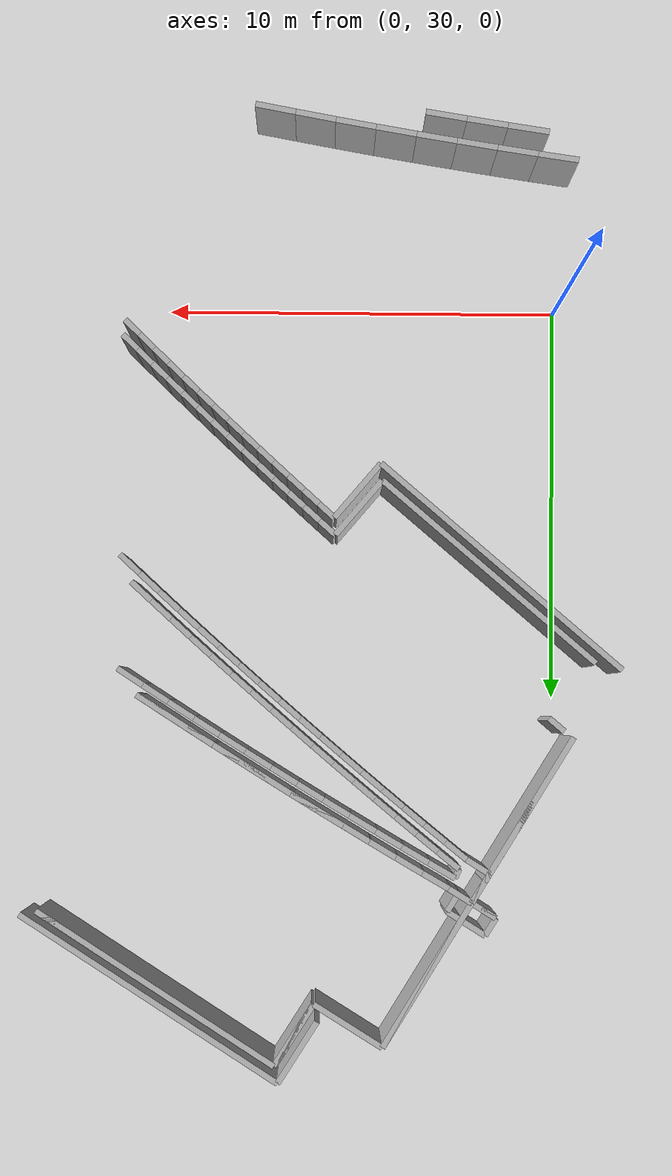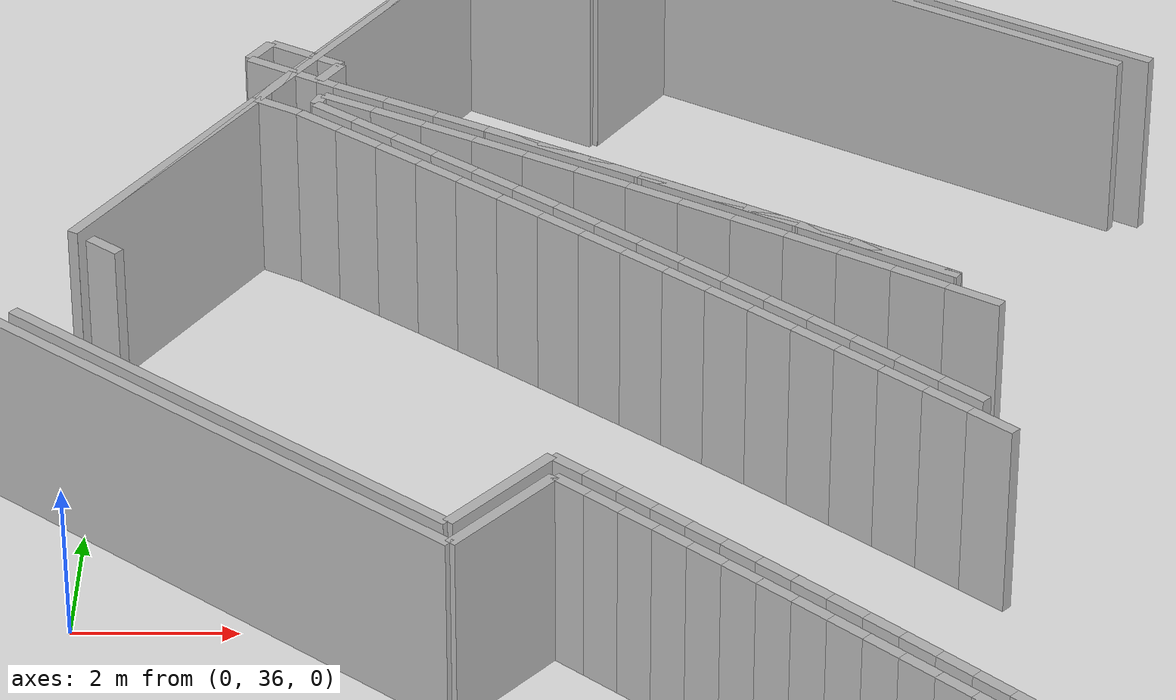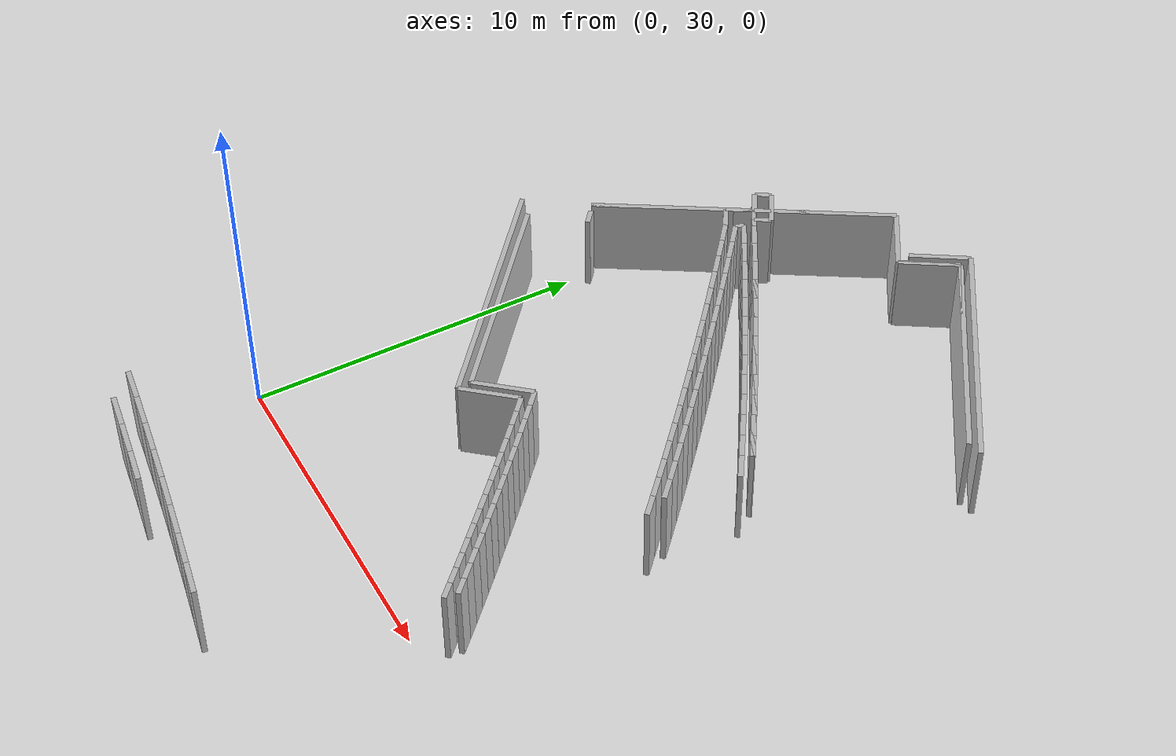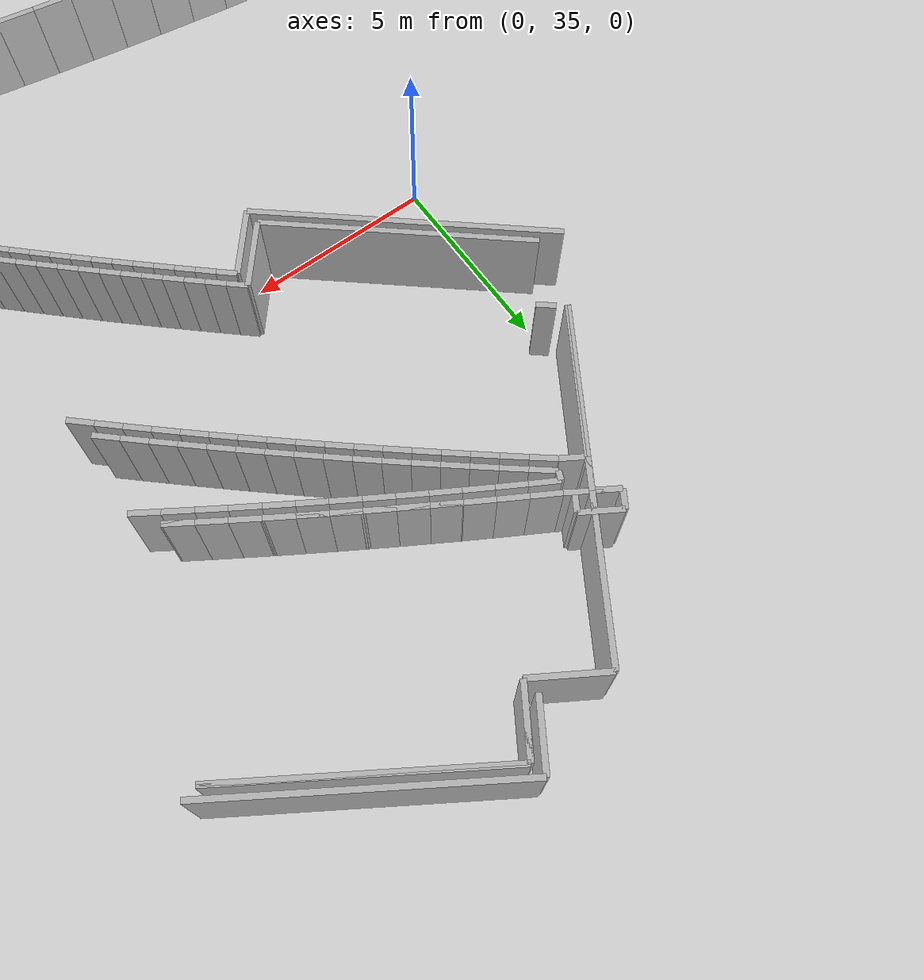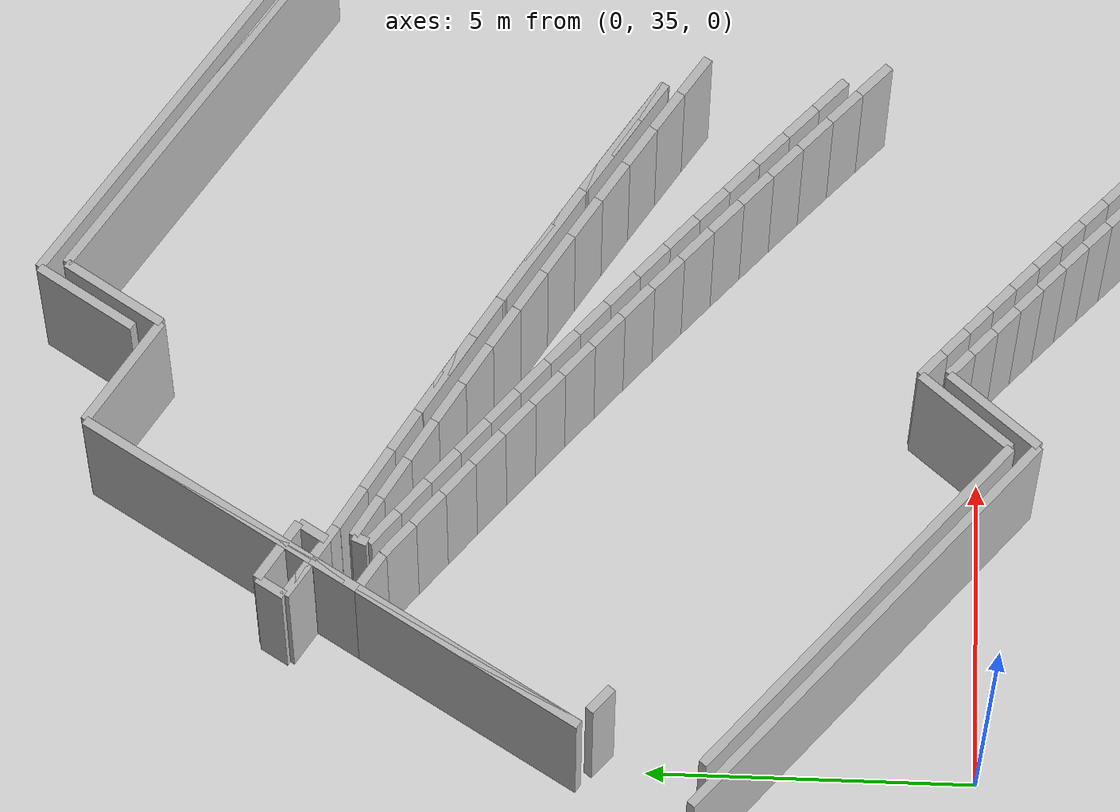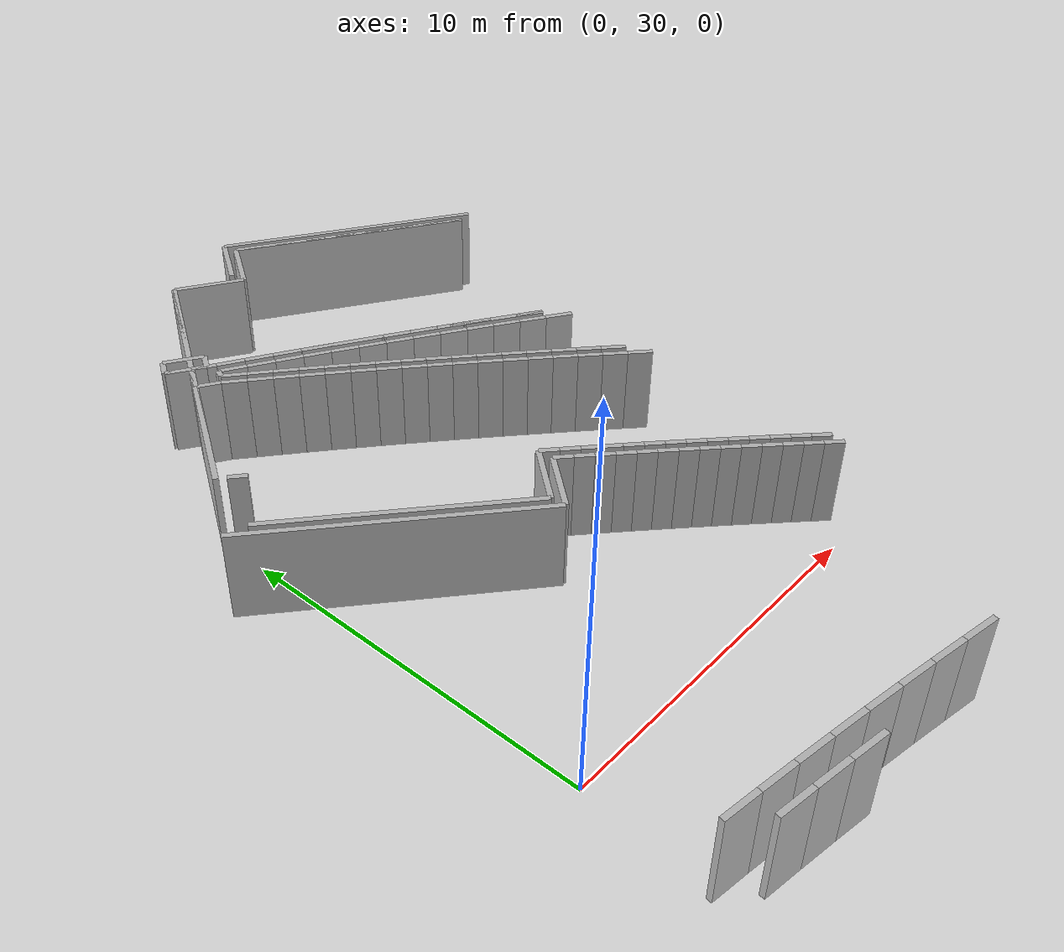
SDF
<sdf version="1.6">
 <model name="sps_0506">
  <static>1</static>
  <allow_auto_disable>0</allow_auto_disable>
  <link name="Wall77">
   <collision name="collision"><geometry><box><size>0.838576 0.15 2.5</size></box></geometry></collision>
   <visual name="visual">
    <geometry><box><size>0.838576 0.15 2.5</size></box></geometry>
    <transparency>0.0</transparency>
   </visual>
   <pose>2.00286 44.7527 1.25 0 0 -2.12094</pose>
  </link>
  <link name="Wall78">
   <collision name="collision"><geometry><box><size>0.659275 0.15 2.5</size></box></geometry></collision>
   <visual name="visual">
    <geometry><box><size>0.659275 0.15 2.5</size></box></geometry>
    <transparency>0.0</transparency>
   </visual>
   <pose>2.50326 44.9381 1.25 0 -0 2.59255</pose>
  </link>
  <link name="Wall79">
   <collision name="collision"><geometry><box><size>7.89992 0.15 2.5</size></box></geometry></collision>
   <visual name="visual">
    <geometry><box><size>7.89992 0.15 2.5</size></box></geometry>
    <transparency>0.0</transparency>
   </visual>
   <pose>1.51946 36.7798 1.25 0 0 -0.702542</pose>
  </link>
  <link name="Wall80">
   <collision name="collision"><geometry><box><size>1.78292 0.15 2.5</size></box></geometry></collision>
   <visual name="visual">
    <geometry><box><size>1.78292 0.15 2.5</size></box></geometry>
    <transparency>0.0</transparency>
   </visual>
   <pose>6.49825 48.8022 1.25 0 -0 1.00621</pose>
  </link>
  <link name="Wall470">
   <collision name="collision"><geometry><box><size>0.497983 0.15 2.5</size></box></geometry></collision>
   <visual name="visual">
    <geometry><box><size>0.497983 0.15 2.5</size></box></geometry>
    <transparency>0.0</transparency>
   </visual>
   <pose>0.129661 40.7086 1.25 0 0 -0.70158</pose>
  </link>
  <link name="Wall473">
   <collision name="collision"><geometry><box><size>0.246013 0.15 2.5</size></box></geometry></collision>
   <visual name="visual">
    <geometry><box><size>0.246013 0.15 2.5</size></box></geometry>
    <transparency>0.0</transparency>
   </visual>
   <pose>2.58913 44.3913 1.25 0 -0 1.18144</pose>
  </link>
  <link name="Wall474">
   <collision name="collision"><geometry><box><size>7.0003 0.15 2.5</size></box></geometry></collision>
   <visual name="visual">
    <geometry><box><size>7.0003 0.15 2.5</size></box></geometry>
    <transparency>0.0</transparency>
   </visual>
   <pose>1.82793 36.9118 1.25 0 0 -0.702554</pose>
  </link>
  <link name="Wall818">
   <collision name="collision"><geometry><box><size>7.00085 0.15 2.5</size></box></geometry></collision>
   <visual name="visual">
    <geometry><box><size>7.00085 0.15 2.5</size></box></geometry>
    <transparency>0.0</transparency>
   </visual>
   <pose>10.0257 47.2686 1.25 0 0 -0.56443</pose>
  </link>
  <link name="Wall1211">
   <collision name="collision"><geometry><box><size>1.79992 0.15 2.5</size></box></geometry></collision>
   <visual name="visual">
    <geometry><box><size>1.79992 0.15 2.5</size></box></geometry>
    <transparency>0.0</transparency>
   </visual>
   <pose>6.58684 48.3807 1.25 0 -0 1.00637</pose>
  </link>
  <link name="Wall1218">
   <collision name="collision"><geometry><box><size>7.60127 0.15 2.5</size></box></geometry></collision>
   <visual name="visual">
    <geometry><box><size>7.60127 0.15 2.5</size></box></geometry>
    <transparency>0.0</transparency>
   </visual>
   <pose>10.1864 47.5222 1.25 0 -0 2.57716</pose>
  </link>
  <link name="Wall2168">
   <collision name="collision"><geometry><box><size>1.79253 0.15 2.5</size></box></geometry></collision>
   <visual name="visual">
    <geometry><box><size>1.79253 0.15 2.5</size></box></geometry>
    <transparency>0.0</transparency>
   </visual>
   <pose>5.11336 34.9114 1.25 0 -0 0.868028</pose>
  </link>
  <link name="Wall2552">
   <collision name="collision"><geometry><box><size>0.670188 0.15 2.5</size></box></geometry></collision>
   <visual name="visual">
    <geometry><box><size>0.670188 0.15 2.5</size></box></geometry>
    <transparency>0.0</transparency>
   </visual>
   <pose>2.06905 44.2197 1.25 0 0 -0.551571</pose>
  </link>
  <link name="Wall2553">
   <collision name="collision"><geometry><box><size>1.8003 0.15 2.5</size></box></geometry></collision>
   <visual name="visual">
    <geometry><box><size>1.8003 0.15 2.5</size></box></geometry>
    <transparency>0.0</transparency>
   </visual>
   <pose>5.08074 35.3372 1.25 0 -0 0.86844</pose>
  </link>
  <link name="Wall3035">
   <collision name="collision"><geometry><box><size>4.17003 0.15 2.5</size></box></geometry></collision>
   <visual name="visual">
    <geometry><box><size>4.17003 0.15 2.5</size></box></geometry>
    <transparency>0.0</transparency>
   </visual>
   <pose>3.31307 46.8876 1.25 0 0 -2.12102</pose>
  </link>
  <link name="Wall3036">
   <collision name="collision"><geometry><box><size>0.614917 0.15 2.5</size></box></geometry></collision>
   <visual name="visual">
    <geometry><box><size>0.614917 0.15 2.5</size></box></geometry>
    <transparency>0.0</transparency>
   </visual>
   <pose>2.06216 44.8482 1.25 0 0 -2.1208</pose>
  </link>
  <link name="Wall3037">
   <collision name="collision"><geometry><box><size>0.223607 0.15 2.5</size></box></geometry></collision>
   <visual name="visual">
    <geometry><box><size>0.223607 0.15 2.5</size></box></geometry>
    <transparency>0.0</transparency>
   </visual>
   <pose>1.84295 44.4908 1.25 0 0 -2.12147</pose>
  </link>
  <link name="Wall3038">
   <collision name="collision"><geometry><box><size>3.97016 0.15 2.5</size></box></geometry></collision>
   <visual name="visual">
    <geometry><box><size>3.97016 0.15 2.5</size></box></geometry>
    <transparency>0.0</transparency>
   </visual>
   <pose>0.74636 42.7035 1.25 0 0 -2.1211</pose>
  </link>
  <link name="Wall3636">
   <collision name="collision"><geometry><box><size>4.17028 0.15 2.5</size></box></geometry></collision>
   <visual name="visual">
    <geometry><box><size>4.17028 0.15 2.5</size></box></geometry>
    <transparency>0.0</transparency>
   </visual>
   <pose>3.31274 46.8875 1.25 0 -0 1.02056</pose>
  </link>
  <link name="Wall3637">
   <collision name="collision"><geometry><box><size>1.99752 0.15 2.5</size></box></geometry></collision>
   <visual name="visual">
    <geometry><box><size>1.99752 0.15 2.5</size></box></geometry>
    <transparency>0.0</transparency>
   </visual>
   <pose>5.25436 48.1426 1.25 0 0 -0.550282</pose>
  </link>
  <link name="Wall3638">
   <collision name="collision"><geometry><box><size>1.79989 0.15 2.5</size></box></geometry></collision>
   <visual name="visual">
    <geometry><box><size>1.79989 0.15 2.5</size></box></geometry>
    <transparency>0.0</transparency>
   </visual>
   <pose>6.58706 48.3807 1.25 0 -0 1.0064</pose>
  </link>
  <link name="Wall3639">
   <collision name="collision"><geometry><box><size>7.00091 0.15 2.5</size></box></geometry></collision>
   <visual name="visual">
    <geometry><box><size>7.00091 0.15 2.5</size></box></geometry>
    <transparency>0.0</transparency>
   </visual>
   <pose>10.026 47.2686 1.25 0 0 -0.564425</pose>
  </link>
  <link name="Wall3674">
   <collision name="collision"><geometry><box><size>2.27685 0.15 2.5</size></box></geometry></collision>
   <visual name="visual">
    <geometry><box><size>2.27685 0.15 2.5</size></box></geometry>
    <transparency>0.0</transparency>
   </visual>
   <pose>9.61266 40.6589 1.25 0 -0 2.57612</pose>
  </link>
  <link name="Wall3675">
   <collision name="collision"><geometry><box><size>2.27679 0.15 2.5</size></box></geometry></collision>
   <visual name="visual">
    <geometry><box><size>2.27679 0.15 2.5</size></box></geometry>
    <transparency>0.0</transparency>
   </visual>
   <pose>7.68185 41.8654 1.25 0 -0 2.59007</pose>
  </link>
  <link name="Wall3676">
   <collision name="collision"><geometry><box><size>2.27692 0.15 2.5</size></box></geometry></collision>
   <visual name="visual">
    <geometry><box><size>2.27692 0.15 2.5</size></box></geometry>
    <transparency>0.0</transparency>
   </visual>
   <pose>5.73434 43.0448 1.25 0 -0 2.60406</pose>
  </link>
  <link name="Wall6794">
   <collision name="collision"><geometry><box><size>0.699978 0.15 2.5</size></box></geometry></collision>
   <visual name="visual">
    <geometry><box><size>0.699978 0.15 2.5</size></box></geometry>
    <transparency>0.0</transparency>
   </visual>
   <pose>1.92416 45.2938 1.25 0 -0 2.58908</pose>
  </link>
  <link name="Wall9449">
   <collision name="collision"><geometry><box><size>1.03449 0.15 2.5</size></box></geometry></collision>
   <visual name="visual">
    <geometry><box><size>1.03449 0.15 2.5</size></box></geometry>
    <transparency>0.0</transparency>
   </visual>
   <pose>7.25628 25.2402 1.25 0 -0 2.95634</pose>
  </link>
  <link name="Wall9450">
   <collision name="collision"><geometry><box><size>1.03454 0.15 2.5</size></box></geometry></collision>
   <visual name="visual">
    <geometry><box><size>1.03454 0.15 2.5</size></box></geometry>
    <transparency>0.0</transparency>
   </visual>
   <pose>6.23916 25.4291 1.25 0 -0 2.95959</pose>
  </link>
  <link name="Wall9451">
   <collision name="collision"><geometry><box><size>1.0344 0.15 2.5</size></box></geometry></collision>
   <visual name="visual">
    <geometry><box><size>1.0344 0.15 2.5</size></box></geometry>
    <transparency>0.0</transparency>
   </visual>
   <pose>5.22115 25.6129 1.25 0 -0 2.96634</pose>
  </link>
  <link name="Wall9452">
   <collision name="collision"><geometry><box><size>1.03458 0.15 2.5</size></box></geometry></collision>
   <visual name="visual">
    <geometry><box><size>1.03458 0.15 2.5</size></box></geometry>
    <transparency>0.0</transparency>
   </visual>
   <pose>4.20196 25.7901 1.25 0 -0 2.97259</pose>
  </link>
  <link name="Wall9453">
   <collision name="collision"><geometry><box><size>1.03441 0.15 2.5</size></box></geometry></collision>
   <visual name="visual">
    <geometry><box><size>1.03441 0.15 2.5</size></box></geometry>
    <transparency>0.0</transparency>
   </visual>
   <pose>3.18163 25.9607 1.25 0 -0 2.97927</pose>
  </link>
  <link name="Wall9454">
   <collision name="collision"><geometry><box><size>1.03452 0.15 2.5</size></box></geometry></collision>
   <visual name="visual">
    <geometry><box><size>1.03452 0.15 2.5</size></box></geometry>
    <transparency>0.0</transparency>
   </visual>
   <pose>2.16024 26.1246 1.25 0 -0 2.98568</pose>
  </link>
  <link name="Wall9455">
   <collision name="collision"><geometry><box><size>1.03451 0.15 2.5</size></box></geometry></collision>
   <visual name="visual">
    <geometry><box><size>1.03451 0.15 2.5</size></box></geometry>
    <transparency>0.0</transparency>
   </visual>
   <pose>1.13775 26.2818 1.25 0 -0 2.99236</pose>
  </link>
  <link name="Wall9456">
   <collision name="collision"><geometry><box><size>1.03451 0.15 2.5</size></box></geometry></collision>
   <visual name="visual">
    <geometry><box><size>1.03451 0.15 2.5</size></box></geometry>
    <transparency>0.0</transparency>
   </visual>
   <pose>0.11425 26.4323 1.25 0 -0 2.99886</pose>
  </link>
  <link name="Wall9611">
   <collision name="collision"><geometry><box><size>0.757521 0.15 2.5</size></box></geometry></collision>
   <visual name="visual">
    <geometry><box><size>0.757521 0.15 2.5</size></box></geometry>
    <transparency>0.0</transparency>
   </visual>
   <pose>10.7341 39.5988 1.25 0 -0 2.56742</pose>
  </link>
  <link name="Wall9612">
   <collision name="collision"><geometry><box><size>0.757765 0.15 2.5</size></box></geometry></collision>
   <visual name="visual">
    <geometry><box><size>0.757765 0.15 2.5</size></box></geometry>
    <transparency>0.0</transparency>
   </visual>
   <pose>10.0969 40.0088 1.25 0 -0 2.57213</pose>
  </link>
  <link name="Wall9613">
   <collision name="collision"><geometry><box><size>0.757398 0.15 2.5</size></box></geometry></collision>
   <visual name="visual">
    <geometry><box><size>0.757398 0.15 2.5</size></box></geometry>
    <transparency>0.0</transparency>
   </visual>
   <pose>9.45797 40.4158 1.25 0 -0 2.57679</pose>
  </link>
  <link name="Wall9614">
   <collision name="collision"><geometry><box><size>0.757559 0.15 2.5</size></box></geometry></collision>
   <visual name="visual">
    <geometry><box><size>0.757559 0.15 2.5</size></box></geometry>
    <transparency>0.0</transparency>
   </visual>
   <pose>8.81716 40.8197 1.25 0 -0 2.58159</pose>
  </link>
  <link name="Wall9615">
   <collision name="collision"><geometry><box><size>0.757634 0.15 2.5</size></box></geometry></collision>
   <visual name="visual">
    <geometry><box><size>0.757634 0.15 2.5</size></box></geometry>
    <transparency>0.0</transparency>
   </visual>
   <pose>8.17434 41.2206 1.25 0 -0 2.58631</pose>
  </link>
  <link name="Wall9616">
   <collision name="collision"><geometry><box><size>0.757649 0.15 2.5</size></box></geometry></collision>
   <visual name="visual">
    <geometry><box><size>0.757649 0.15 2.5</size></box></geometry>
    <transparency>0.0</transparency>
   </visual>
   <pose>7.52953 41.6184 1.25 0 -0 2.59134</pose>
  </link>
  <link name="Wall9617">
   <collision name="collision"><geometry><box><size>0.757602 0.15 2.5</size></box></geometry></collision>
   <visual name="visual">
    <geometry><box><size>0.757602 0.15 2.5</size></box></geometry>
    <transparency>0.0</transparency>
   </visual>
   <pose>6.88283 42.0131 1.25 0 -0 2.59592</pose>
  </link>
  <link name="Wall9618">
   <collision name="collision"><geometry><box><size>0.75754 0.15 2.5</size></box></geometry></collision>
   <visual name="visual">
    <geometry><box><size>0.75754 0.15 2.5</size></box></geometry>
    <transparency>0.0</transparency>
   </visual>
   <pose>6.23446 42.4049 1.25 0 -0 2.60011</pose>
  </link>
  <link name="Wall9619">
   <collision name="collision"><geometry><box><size>0.757661 0.15 2.5</size></box></geometry></collision>
   <visual name="visual">
    <geometry><box><size>0.757661 0.15 2.5</size></box></geometry>
    <transparency>0.0</transparency>
   </visual>
   <pose>5.58425 42.7937 1.25 0 -0 2.60518</pose>
  </link>
  <link name="Wall9620">
   <collision name="collision"><geometry><box><size>0.757578 0.15 2.5</size></box></geometry></collision>
   <visual name="visual">
    <geometry><box><size>0.757578 0.15 2.5</size></box></geometry>
    <transparency>0.0</transparency>
   </visual>
   <pose>4.93215 43.1794 1.25 0 -0 2.6098</pose>
  </link>
  <link name="Wall9621">
   <collision name="collision"><geometry><box><size>0.757639 0.15 2.5</size></box></geometry></collision>
   <visual name="visual">
    <geometry><box><size>0.757639 0.15 2.5</size></box></geometry>
    <transparency>0.0</transparency>
   </visual>
   <pose>4.27825 43.562 1.25 0 -0 2.6146</pose>
  </link>
  <link name="Wall9622">
   <collision name="collision"><geometry><box><size>0.757468 0.15 2.5</size></box></geometry></collision>
   <visual name="visual">
    <geometry><box><size>0.757468 0.15 2.5</size></box></geometry>
    <transparency>0.0</transparency>
   </visual>
   <pose>3.62255 43.9414 1.25 0 -0 2.6195</pose>
  </link>
  <link name="Wall9623">
   <collision name="collision"><geometry><box><size>0.757655 0.15 2.5</size></box></geometry></collision>
   <visual name="visual">
    <geometry><box><size>0.757655 0.15 2.5</size></box></geometry>
    <transparency>0.0</transparency>
   </visual>
   <pose>2.96505 44.3177 1.25 0 -0 2.6241</pose>
  </link>
  <link name="Wall12856">
   <collision name="collision"><geometry><box><size>1.09985 0.15 2.5</size></box></geometry></collision>
   <visual name="visual">
    <geometry><box><size>1.09985 0.15 2.5</size></box></geometry>
    <transparency>0.0</transparency>
   </visual>
   <pose>2.09435 45.1889 1.25 0 0 -0.552488</pose>
  </link>
  <link name="Wall12857">
   <collision name="collision"><geometry><box><size>0.500078 0.15 2.5</size></box></geometry></collision>
   <visual name="visual">
    <geometry><box><size>0.500078 0.15 2.5</size></box></geometry>
    <transparency>0.0</transparency>
   </visual>
   <pose>2.69375 45.1131 1.25 0 -0 1.01801</pose>
  </link>
  <link name="Wall12858">
   <collision name="collision"><geometry><box><size>1.1001 0.15 2.5</size></box></geometry></collision>
   <visual name="visual">
    <geometry><box><size>1.1001 0.15 2.5</size></box></geometry>
    <transparency>0.0</transparency>
   </visual>
   <pose>2.35683 45.6146 1.25 0 -0 2.58905</pose>
  </link>
  <link name="Wall12859">
   <collision name="collision"><geometry><box><size>0.500138 0.15 2.5</size></box></geometry></collision>
   <visual name="visual">
    <geometry><box><size>0.500138 0.15 2.5</size></box></geometry>
    <transparency>0.0</transparency>
   </visual>
   <pose>1.75744 45.6904 1.25 0 0 -2.12308</pose>
  </link>
  <link name="Wall19247">
   <collision name="collision"><geometry><box><size>0.516773 0.15 2.5</size></box></geometry></collision>
   <visual name="visual">
    <geometry><box><size>0.516773 0.15 2.5</size></box></geometry>
    <transparency>0.0</transparency>
   </visual>
   <pose>10.7945 30.8384 1.25 0 -0 2.3683</pose>
  </link>
  <link name="Wall19248">
   <collision name="collision"><geometry><box><size>0.516668 0.15 2.5</size></box></geometry></collision>
   <visual name="visual">
    <geometry><box><size>0.516668 0.15 2.5</size></box></geometry>
    <transparency>0.0</transparency>
   </visual>
   <pose>10.4242 31.1987 1.25 0 -0 2.37173</pose>
  </link>
  <link name="Wall19249">
   <collision name="collision"><geometry><box><size>0.516747 0.15 2.5</size></box></geometry></collision>
   <visual name="visual">
    <geometry><box><size>0.516747 0.15 2.5</size></box></geometry>
    <transparency>0.0</transparency>
   </visual>
   <pose>10.0525 31.5576 1.25 0 -0 2.37566</pose>
  </link>
  <link name="Wall19250">
   <collision name="collision"><geometry><box><size>0.516689 0.15 2.5</size></box></geometry></collision>
   <visual name="visual">
    <geometry><box><size>0.516689 0.15 2.5</size></box></geometry>
    <transparency>0.0</transparency>
   </visual>
   <pose>9.67956 31.9153 1.25 0 -0 2.37833</pose>
  </link>
  <link name="Wall19251">
   <collision name="collision"><geometry><box><size>0.516823 0.15 2.5</size></box></geometry></collision>
   <visual name="visual">
    <geometry><box><size>0.516823 0.15 2.5</size></box></geometry>
    <transparency>0.0</transparency>
   </visual>
   <pose>9.30547 32.2718 1.25 0 -0 2.38217</pose>
  </link>
  <link name="Wall19252">
   <collision name="collision"><geometry><box><size>0.516651 0.15 2.5</size></box></geometry></collision>
   <visual name="visual">
    <geometry><box><size>0.516651 0.15 2.5</size></box></geometry>
    <transparency>0.0</transparency>
   </visual>
   <pose>8.93017 32.627 1.25 0 -0 2.38527</pose>
  </link>
  <link name="Wall19253">
   <collision name="collision"><geometry><box><size>0.51688 0.15 2.5</size></box></geometry></collision>
   <visual name="visual">
    <geometry><box><size>0.51688 0.15 2.5</size></box></geometry>
    <transparency>0.0</transparency>
   </visual>
   <pose>8.55367 32.981 1.25 0 -0 2.38876</pose>
  </link>
  <link name="Wall19254">
   <collision name="collision"><geometry><box><size>0.516722 0.15 2.5</size></box></geometry></collision>
   <visual name="visual">
    <geometry><box><size>0.516722 0.15 2.5</size></box></geometry>
    <transparency>0.0</transparency>
   </visual>
   <pose>8.17596 33.3337 1.25 0 -0 2.39203</pose>
  </link>
  <link name="Wall19255">
   <collision name="collision"><geometry><box><size>0.516825 0.15 2.5</size></box></geometry></collision>
   <visual name="visual">
    <geometry><box><size>0.516825 0.15 2.5</size></box></geometry>
    <transparency>0.0</transparency>
   </visual>
   <pose>7.79714 33.6852 1.25 0 -0 2.39512</pose>
  </link>
  <link name="Wall19256">
   <collision name="collision"><geometry><box><size>0.516688 0.15 2.5</size></box></geometry></collision>
   <visual name="visual">
    <geometry><box><size>0.516688 0.15 2.5</size></box></geometry>
    <transparency>0.0</transparency>
   </visual>
   <pose>7.41714 34.0354 1.25 0 -0 2.39889</pose>
  </link>
  <link name="Wall19257">
   <collision name="collision"><geometry><box><size>0.51672 0.15 2.5</size></box></geometry></collision>
   <visual name="visual">
    <geometry><box><size>0.51672 0.15 2.5</size></box></geometry>
    <transparency>0.0</transparency>
   </visual>
   <pose>7.03594 34.3842 1.25 0 -0 2.40215</pose>
  </link>
  <link name="Wall19258">
   <collision name="collision"><geometry><box><size>0.516802 0.15 2.5</size></box></geometry></collision>
   <visual name="visual">
    <geometry><box><size>0.516802 0.15 2.5</size></box></geometry>
    <transparency>0.0</transparency>
   </visual>
   <pose>6.65356 34.7318 1.25 0 -0 2.40549</pose>
  </link>
  <link name="Wall19259">
   <collision name="collision"><geometry><box><size>0.516767 0.15 2.5</size></box></geometry></collision>
   <visual name="visual">
    <geometry><box><size>0.516767 0.15 2.5</size></box></geometry>
    <transparency>0.0</transparency>
   </visual>
   <pose>6.26995 35.0781 1.25 0 -0 2.40908</pose>
  </link>
  <link name="Wall19260">
   <collision name="collision"><geometry><box><size>0.51672 0.15 2.5</size></box></geometry></collision>
   <visual name="visual">
    <geometry><box><size>0.51672 0.15 2.5</size></box></geometry>
    <transparency>0.0</transparency>
   </visual>
   <pose>5.88525 35.4231 1.25 0 -0 2.41202</pose>
  </link>
  <link name="Wall21109">
   <collision name="collision"><geometry><box><size>0.758992 0.15 2.5</size></box></geometry></collision>
   <visual name="visual">
    <geometry><box><size>0.758992 0.15 2.5</size></box></geometry>
    <transparency>0.0</transparency>
   </visual>
   <pose>10.2541 40.2537 1.25 0 -0 2.57155</pose>
  </link>
  <link name="Wall21110">
   <collision name="collision"><geometry><box><size>0.758895 0.15 2.5</size></box></geometry></collision>
   <visual name="visual">
    <geometry><box><size>0.758895 0.15 2.5</size></box></geometry>
    <transparency>0.0</transparency>
   </visual>
   <pose>9.61425 40.6618 1.25 0 -0 2.57623</pose>
  </link>
  <link name="Wall21111">
   <collision name="collision"><geometry><box><size>0.759081 0.15 2.5</size></box></geometry></collision>
   <visual name="visual">
    <geometry><box><size>0.759081 0.15 2.5</size></box></geometry>
    <transparency>0.0</transparency>
   </visual>
   <pose>8.97246 41.067 1.25 0 -0 2.58067</pose>
  </link>
  <link name="Wall21112">
   <collision name="collision"><geometry><box><size>0.758796 0.15 2.5</size></box></geometry></collision>
   <visual name="visual">
    <geometry><box><size>0.758796 0.15 2.5</size></box></geometry>
    <transparency>0.0</transparency>
   </visual>
   <pose>8.32888 41.4692 1.25 0 -0 2.58536</pose>
  </link>
  <link name="Wall21113">
   <collision name="collision"><geometry><box><size>0.758904 0.15 2.5</size></box></geometry></collision>
   <visual name="visual">
    <geometry><box><size>0.758904 0.15 2.5</size></box></geometry>
    <transparency>0.0</transparency>
   </visual>
   <pose>7.68346 41.8683 1.25 0 -0 2.59018</pose>
  </link>
  <link name="Wall21114">
   <collision name="collision"><geometry><box><size>0.758853 0.15 2.5</size></box></geometry></collision>
   <visual name="visual">
    <geometry><box><size>0.758853 0.15 2.5</size></box></geometry>
    <transparency>0.0</transparency>
   </visual>
   <pose>7.03616 42.2644 1.25 0 -0 2.59476</pose>
  </link>
  <link name="Wall21115">
   <collision name="collision"><geometry><box><size>0.759121 0.15 2.5</size></box></geometry></collision>
   <visual name="visual">
    <geometry><box><size>0.759121 0.15 2.5</size></box></geometry>
    <transparency>0.0</transparency>
   </visual>
   <pose>6.38695 42.6576 1.25 0 -0 2.5993</pose>
  </link>
  <link name="Wall21116">
   <collision name="collision"><geometry><box><size>0.759008 0.15 2.5</size></box></geometry></collision>
   <visual name="visual">
    <geometry><box><size>0.759008 0.15 2.5</size></box></geometry>
    <transparency>0.0</transparency>
   </visual>
   <pose>5.73586 43.0478 1.25 0 -0 2.60408</pose>
  </link>
  <link name="Wall21117">
   <collision name="collision"><geometry><box><size>0.7589 0.15 2.5</size></box></geometry></collision>
   <visual name="visual">
    <geometry><box><size>0.7589 0.15 2.5</size></box></geometry>
    <transparency>0.0</transparency>
   </visual>
   <pose>5.08306 43.4349 1.25 0 -0 2.60858</pose>
  </link>
  <link name="Wall21118">
   <collision name="collision"><geometry><box><size>0.75904 0.15 2.5</size></box></geometry></collision>
   <visual name="visual">
    <geometry><box><size>0.75904 0.15 2.5</size></box></geometry>
    <transparency>0.0</transparency>
   </visual>
   <pose>4.42846 43.819 1.25 0 -0 2.61335</pose>
  </link>
  <link name="Wall21119">
   <collision name="collision"><geometry><box><size>0.758872 0.15 2.5</size></box></geometry></collision>
   <visual name="visual">
    <geometry><box><size>0.758872 0.15 2.5</size></box></geometry>
    <transparency>0.0</transparency>
   </visual>
   <pose>3.77206 44.2 1.25 0 -0 2.61806</pose>
  </link>
  <link name="Wall21120">
   <collision name="collision"><geometry><box><size>0.758918 0.15 2.5</size></box></geometry></collision>
   <visual name="visual">
    <geometry><box><size>0.758918 0.15 2.5</size></box></geometry>
    <transparency>0.0</transparency>
   </visual>
   <pose>3.11394 44.5779 1.25 0 -0 2.62264</pose>
  </link>
  <link name="Wall24780">
   <collision name="collision"><geometry><box><size>4.17038 0.15 2.5</size></box></geometry></collision>
   <visual name="visual">
    <geometry><box><size>4.17038 0.15 2.5</size></box></geometry>
    <transparency>0.0</transparency>
   </visual>
   <pose>3.31246 46.8875 1.25 0 0 -2.12107</pose>
  </link>
  <link name="Wall24781">
   <collision name="collision"><geometry><box><size>0.838368 0.15 2.5</size></box></geometry></collision>
   <visual name="visual">
    <geometry><box><size>0.838368 0.15 2.5</size></box></geometry>
    <transparency>0.0</transparency>
   </visual>
   <pose>2.00286 44.7528 1.25 0 0 -2.12109</pose>
  </link>
  <link name="Wall24782">
   <collision name="collision"><geometry><box><size>3.97032 0.15 2.5</size></box></geometry></collision>
   <visual name="visual">
    <geometry><box><size>3.97032 0.15 2.5</size></box></geometry>
    <transparency>0.0</transparency>
   </visual>
   <pose>0.745567 42.7034 1.25 0 0 -2.12107</pose>
  </link>
  <link name="Wall24926">
   <collision name="collision"><geometry><box><size>0.523172 0.15 2.5</size></box></geometry></collision>
   <visual name="visual">
    <geometry><box><size>0.523172 0.15 2.5</size></box></geometry>
    <transparency>0.0</transparency>
   </visual>
   <pose>10.8374 31.2187 1.25 0 -0 2.36997</pose>
  </link>
  <link name="Wall24927">
   <collision name="collision"><geometry><box><size>0.523203 0.15 2.5</size></box></geometry></collision>
   <visual name="visual">
    <geometry><box><size>0.523203 0.15 2.5</size></box></geometry>
    <transparency>0.0</transparency>
   </visual>
   <pose>10.4617 31.5828 1.25 0 -0 2.37377</pose>
  </link>
  <link name="Wall24928">
   <collision name="collision"><geometry><box><size>0.523103 0.15 2.5</size></box></geometry></collision>
   <visual name="visual">
    <geometry><box><size>0.523103 0.15 2.5</size></box></geometry>
    <transparency>0.0</transparency>
   </visual>
   <pose>10.0848 31.9456 1.25 0 -0 2.37666</pose>
  </link>
  <link name="Wall24929">
   <collision name="collision"><geometry><box><size>0.523149 0.15 2.5</size></box></geometry></collision>
   <visual name="visual">
    <geometry><box><size>0.523149 0.15 2.5</size></box></geometry>
    <transparency>0.0</transparency>
   </visual>
   <pose>9.70666 32.3071 1.25 0 -0 2.38062</pose>
  </link>
  <link name="Wall24930">
   <collision name="collision"><geometry><box><size>0.523192 0.15 2.5</size></box></geometry></collision>
   <visual name="visual">
    <geometry><box><size>0.523192 0.15 2.5</size></box></geometry>
    <transparency>0.0</transparency>
   </visual>
   <pose>9.32723 32.6673 1.25 0 -0 2.38375</pose>
  </link>
  <link name="Wall24931">
   <collision name="collision"><geometry><box><size>0.523164 0.15 2.5</size></box></geometry></collision>
   <visual name="visual">
    <geometry><box><size>0.523164 0.15 2.5</size></box></geometry>
    <transparency>0.0</transparency>
   </visual>
   <pose>8.94656 33.0262 1.25 0 -0 2.38755</pose>
  </link>
  <link name="Wall24932">
   <collision name="collision"><geometry><box><size>0.523173 0.15 2.5</size></box></geometry></collision>
   <visual name="visual">
    <geometry><box><size>0.523173 0.15 2.5</size></box></geometry>
    <transparency>0.0</transparency>
   </visual>
   <pose>8.56466 33.3838 1.25 0 -0 2.3906</pose>
  </link>
  <link name="Wall24933">
   <collision name="collision"><geometry><box><size>0.523367 0.15 2.5</size></box></geometry></collision>
   <visual name="visual">
    <geometry><box><size>0.523367 0.15 2.5</size></box></geometry>
    <transparency>0.0</transparency>
   </visual>
   <pose>8.18154 33.7402 1.25 0 -0 2.39397</pose>
  </link>
  <link name="Wall24934">
   <collision name="collision"><geometry><box><size>0.52309 0.15 2.5</size></box></geometry></collision>
   <visual name="visual">
    <geometry><box><size>0.52309 0.15 2.5</size></box></geometry>
    <transparency>0.0</transparency>
   </visual>
   <pose>7.79726 34.0953 1.25 0 -0 2.39729</pose>
  </link>
  <link name="Wall24935">
   <collision name="collision"><geometry><box><size>0.523261 0.15 2.5</size></box></geometry></collision>
   <visual name="visual">
    <geometry><box><size>0.523261 0.15 2.5</size></box></geometry>
    <transparency>0.0</transparency>
   </visual>
   <pose>7.41177 34.449 1.25 0 -0 2.40108</pose>
  </link>
  <link name="Wall24936">
   <collision name="collision"><geometry><box><size>0.522997 0.15 2.5</size></box></geometry></collision>
   <visual name="visual">
    <geometry><box><size>0.522997 0.15 2.5</size></box></geometry>
    <transparency>0.0</transparency>
   </visual>
   <pose>7.02505 34.8013 1.25 0 -0 2.40441</pose>
  </link>
  <link name="Wall24937">
   <collision name="collision"><geometry><box><size>0.52326 0.15 2.5</size></box></geometry></collision>
   <visual name="visual">
    <geometry><box><size>0.52326 0.15 2.5</size></box></geometry>
    <transparency>0.0</transparency>
   </visual>
   <pose>6.63714 35.1523 1.25 0 -0 2.40785</pose>
  </link>
  <link name="Wall24938">
   <collision name="collision"><geometry><box><size>0.52321 0.15 2.5</size></box></geometry></collision>
   <visual name="visual">
    <geometry><box><size>0.52321 0.15 2.5</size></box></geometry>
    <transparency>0.0</transparency>
   </visual>
   <pose>6.24804 35.5021 1.25 0 -0 2.41075</pose>
  </link>
  <link name="Wall24939">
   <collision name="collision"><geometry><box><size>0.52316 0.15 2.5</size></box></geometry></collision>
   <visual name="visual">
    <geometry><box><size>0.52316 0.15 2.5</size></box></geometry>
    <transparency>0.0</transparency>
   </visual>
   <pose>5.85775 35.8505 1.25 0 -0 2.41488</pose>
  </link>
  <link name="Wall24980">
   <collision name="collision"><geometry><box><size>0.673654 0.15 2.5</size></box></geometry></collision>
   <visual name="visual">
    <geometry><box><size>0.673654 0.15 2.5</size></box></geometry>
    <transparency>0.0</transparency>
   </visual>
   <pose>10.7743 36.7914 1.25 0 -0 2.39522</pose>
  </link>
  <link name="Wall24981">
   <collision name="collision"><geometry><box><size>0.673647 0.15 2.5</size></box></geometry></collision>
   <visual name="visual">
    <geometry><box><size>0.673647 0.15 2.5</size></box></geometry>
    <transparency>0.0</transparency>
   </visual>
   <pose>10.2788 37.2477 1.25 0 -0 2.39965</pose>
  </link>
  <link name="Wall24982">
   <collision name="collision"><geometry><box><size>0.673642 0.15 2.5</size></box></geometry></collision>
   <visual name="visual">
    <geometry><box><size>0.673642 0.15 2.5</size></box></geometry>
    <transparency>0.0</transparency>
   </visual>
   <pose>9.78127 37.7019 1.25 0 -0 2.40369</pose>
  </link>
  <link name="Wall24983">
   <collision name="collision"><geometry><box><size>0.67366 0.15 2.5</size></box></geometry></collision>
   <visual name="visual">
    <geometry><box><size>0.67366 0.15 2.5</size></box></geometry>
    <transparency>0.0</transparency>
   </visual>
   <pose>9.28185 38.154 1.25 0 -0 2.40811</pose>
  </link>
  <link name="Wall24984">
   <collision name="collision"><geometry><box><size>0.673809 0.15 2.5</size></box></geometry></collision>
   <visual name="visual">
    <geometry><box><size>0.673809 0.15 2.5</size></box></geometry>
    <transparency>0.0</transparency>
   </visual>
   <pose>8.78045 38.604 1.25 0 -0 2.4122</pose>
  </link>
  <link name="Wall24985">
   <collision name="collision"><geometry><box><size>0.673554 0.15 2.5</size></box></geometry></collision>
   <visual name="visual">
    <geometry><box><size>0.673554 0.15 2.5</size></box></geometry>
    <transparency>0.0</transparency>
   </visual>
   <pose>8.27715 39.0518 1.25 0 -0 2.41672</pose>
  </link>
  <link name="Wall24986">
   <collision name="collision"><geometry><box><size>0.673687 0.15 2.5</size></box></geometry></collision>
   <visual name="visual">
    <geometry><box><size>0.673687 0.15 2.5</size></box></geometry>
    <transparency>0.0</transparency>
   </visual>
   <pose>7.77196 39.4974 1.25 0 -0 2.42088</pose>
  </link>
  <link name="Wall24987">
   <collision name="collision"><geometry><box><size>0.673544 0.15 2.5</size></box></geometry></collision>
   <visual name="visual">
    <geometry><box><size>0.673544 0.15 2.5</size></box></geometry>
    <transparency>0.0</transparency>
   </visual>
   <pose>7.26485 39.9408 1.25 0 -0 2.42539</pose>
  </link>
  <link name="Wall24988">
   <collision name="collision"><geometry><box><size>0.673655 0.15 2.5</size></box></geometry></collision>
   <visual name="visual">
    <geometry><box><size>0.673655 0.15 2.5</size></box></geometry>
    <transparency>0.0</transparency>
   </visual>
   <pose>6.75585 40.382 1.25 0 -0 2.42949</pose>
  </link>
  <link name="Wall24989">
   <collision name="collision"><geometry><box><size>0.673697 0.15 2.5</size></box></geometry></collision>
   <visual name="visual">
    <geometry><box><size>0.673697 0.15 2.5</size></box></geometry>
    <transparency>0.0</transparency>
   </visual>
   <pose>6.24496 40.8211 1.25 0 -0 2.43372</pose>
  </link>
  <link name="Wall24990">
   <collision name="collision"><geometry><box><size>0.67372 0.15 2.5</size></box></geometry></collision>
   <visual name="visual">
    <geometry><box><size>0.67372 0.15 2.5</size></box></geometry>
    <transparency>0.0</transparency>
   </visual>
   <pose>5.73214 41.258 1.25 0 -0 2.43815</pose>
  </link>
  <link name="Wall24991">
   <collision name="collision"><geometry><box><size>0.673654 0.15 2.5</size></box></geometry></collision>
   <visual name="visual">
    <geometry><box><size>0.673654 0.15 2.5</size></box></geometry>
    <transparency>0.0</transparency>
   </visual>
   <pose>5.21746 41.6927 1.25 0 -0 2.44234</pose>
  </link>
  <link name="Wall24992">
   <collision name="collision"><geometry><box><size>0.673647 0.15 2.5</size></box></geometry></collision>
   <visual name="visual">
    <geometry><box><size>0.673647 0.15 2.5</size></box></geometry>
    <transparency>0.0</transparency>
   </visual>
   <pose>4.70098 42.1252 1.25 0 -0 2.44659</pose>
  </link>
  <link name="Wall24993">
   <collision name="collision"><geometry><box><size>0.673652 0.15 2.5</size></box></geometry></collision>
   <visual name="visual">
    <geometry><box><size>0.673652 0.15 2.5</size></box></geometry>
    <transparency>0.0</transparency>
   </visual>
   <pose>4.18267 42.5555 1.25 0 -0 2.45083</pose>
  </link>
  <link name="Wall24994">
   <collision name="collision"><geometry><box><size>0.673623 0.15 2.5</size></box></geometry></collision>
   <visual name="visual">
    <geometry><box><size>0.673623 0.15 2.5</size></box></geometry>
    <transparency>0.0</transparency>
   </visual>
   <pose>3.66256 42.9836 1.25 0 -0 2.45502</pose>
  </link>
  <link name="Wall24995">
   <collision name="collision"><geometry><box><size>0.673679 0.15 2.5</size></box></geometry></collision>
   <visual name="visual">
    <geometry><box><size>0.673679 0.15 2.5</size></box></geometry>
    <transparency>0.0</transparency>
   </visual>
   <pose>3.14056 43.4094 1.25 0 -0 2.45965</pose>
  </link>
  <link name="Wall24996">
   <collision name="collision"><geometry><box><size>0.673493 0.15 2.5</size></box></geometry></collision>
   <visual name="visual">
    <geometry><box><size>0.673493 0.15 2.5</size></box></geometry>
    <transparency>0.0</transparency>
   </visual>
   <pose>2.61675 43.8329 1.25 0 -0 2.46374</pose>
  </link>
  <link name="Wall25038">
   <collision name="collision"><geometry><box><size>0.674814 0.15 2.5</size></box></geometry></collision>
   <visual name="visual">
    <geometry><box><size>0.674814 0.15 2.5</size></box></geometry>
    <transparency>0.0</transparency>
   </visual>
   <pose>10.4827 37.4695 1.25 0 -0 2.39963</pose>
  </link>
  <link name="Wall25039">
   <collision name="collision"><geometry><box><size>0.674939 0.15 2.5</size></box></geometry></collision>
   <visual name="visual">
    <geometry><box><size>0.674939 0.15 2.5</size></box></geometry>
    <transparency>0.0</transparency>
   </visual>
   <pose>9.98434 37.9245 1.25 0 -0 2.40372</pose>
  </link>
  <link name="Wall25040">
   <collision name="collision"><geometry><box><size>0.674917 0.15 2.5</size></box></geometry></collision>
   <visual name="visual">
    <geometry><box><size>0.674917 0.15 2.5</size></box></geometry>
    <transparency>0.0</transparency>
   </visual>
   <pose>9.48394 38.3774 1.25 0 -0 2.40821</pose>
  </link>
  <link name="Wall25041">
   <collision name="collision"><geometry><box><size>0.674904 0.15 2.5</size></box></geometry></collision>
   <visual name="visual">
    <geometry><box><size>0.674904 0.15 2.5</size></box></geometry>
    <transparency>0.0</transparency>
   </visual>
   <pose>8.98156 38.8281 1.25 0 -0 2.41256</pose>
  </link>
  <link name="Wall25042">
   <collision name="collision"><geometry><box><size>0.675019 0.15 2.5</size></box></geometry></collision>
   <visual name="visual">
    <geometry><box><size>0.675019 0.15 2.5</size></box></geometry>
    <transparency>0.0</transparency>
   </visual>
   <pose>8.47726 39.2767 1.25 0 -0 2.41659</pose>
  </link>
  <link name="Wall25043">
   <collision name="collision"><geometry><box><size>0.674869 0.15 2.5</size></box></geometry></collision>
   <visual name="visual">
    <geometry><box><size>0.674869 0.15 2.5</size></box></geometry>
    <transparency>0.0</transparency>
   </visual>
   <pose>7.97103 39.7231 1.25 0 -0 2.42121</pose>
  </link>
  <link name="Wall25044">
   <collision name="collision"><geometry><box><size>0.674876 0.15 2.5</size></box></geometry></collision>
   <visual name="visual">
    <geometry><box><size>0.674876 0.15 2.5</size></box></geometry>
    <transparency>0.0</transparency>
   </visual>
   <pose>7.46294 40.1673 1.25 0 -0 2.42519</pose>
  </link>
  <link name="Wall25045">
   <collision name="collision"><geometry><box><size>0.674999 0.15 2.5</size></box></geometry></collision>
   <visual name="visual">
    <geometry><box><size>0.674999 0.15 2.5</size></box></geometry>
    <transparency>0.0</transparency>
   </visual>
   <pose>6.95296 40.6094 1.25 0 -0 2.42953</pose>
  </link>
  <link name="Wall25046">
   <collision name="collision"><geometry><box><size>0.674916 0.15 2.5</size></box></geometry></collision>
   <visual name="visual">
    <geometry><box><size>0.674916 0.15 2.5</size></box></geometry>
    <transparency>0.0</transparency>
   </visual>
   <pose>6.44106 41.0493 1.25 0 -0 2.43384</pose>
  </link>
  <link name="Wall25047">
   <collision name="collision"><geometry><box><size>0.674978 0.15 2.5</size></box></geometry></collision>
   <visual name="visual">
    <geometry><box><size>0.674978 0.15 2.5</size></box></geometry>
    <transparency>0.0</transparency>
   </visual>
   <pose>5.92727 41.487 1.25 0 -0 2.43819</pose>
  </link>
  <link name="Wall25048">
   <collision name="collision"><geometry><box><size>0.675028 0.15 2.5</size></box></geometry></collision>
   <visual name="visual">
    <geometry><box><size>0.675028 0.15 2.5</size></box></geometry>
    <transparency>0.0</transparency>
   </visual>
   <pose>5.41146 41.9224 1.25 0 -0 2.44287</pose>
  </link>
  <link name="Wall25049">
   <collision name="collision"><geometry><box><size>0.674905 0.15 2.5</size></box></geometry></collision>
   <visual name="visual">
    <geometry><box><size>0.674905 0.15 2.5</size></box></geometry>
    <transparency>0.0</transparency>
   </visual>
   <pose>4.89385 42.3556 1.25 0 -0 2.44661</pose>
  </link>
  <link name="Wall25050">
   <collision name="collision"><geometry><box><size>0.674935 0.15 2.5</size></box></geometry></collision>
   <visual name="visual">
    <geometry><box><size>0.674935 0.15 2.5</size></box></geometry>
    <transparency>0.0</transparency>
   </visual>
   <pose>4.37447 42.7866 1.25 0 -0 2.45123</pose>
  </link>
  <link name="Wall25051">
   <collision name="collision"><geometry><box><size>0.674954 0.15 2.5</size></box></geometry></collision>
   <visual name="visual">
    <geometry><box><size>0.674954 0.15 2.5</size></box></geometry>
    <transparency>0.0</transparency>
   </visual>
   <pose>3.85317 43.2153 1.25 0 -0 2.45547</pose>
  </link>
  <link name="Wall25052">
   <collision name="collision"><geometry><box><size>0.674795 0.15 2.5</size></box></geometry></collision>
   <visual name="visual">
    <geometry><box><size>0.674795 0.15 2.5</size></box></geometry>
    <transparency>0.0</transparency>
   </visual>
   <pose>3.33016 43.6418 1.25 0 -0 2.45948</pose>
  </link>
  <link name="Wall25053">
   <collision name="collision"><geometry><box><size>0.674827 0.15 2.5</size></box></geometry></collision>
   <visual name="visual">
    <geometry><box><size>0.674827 0.15 2.5</size></box></geometry>
    <transparency>0.0</transparency>
   </visual>
   <pose>2.80535 44.066 1.25 0 -0 2.46417</pose>
  </link>
  <link name="Wall27768">
   <collision name="collision"><geometry><box><size>1.05169 0.15 2.5</size></box></geometry></collision>
   <visual name="visual">
    <geometry><box><size>1.05169 0.15 2.5</size></box></geometry>
    <transparency>0.0</transparency>
   </visual>
   <pose>2.94524 25.3912 1.25 0 -0 2.98019</pose>
  </link>
  <link name="Wall27769">
   <collision name="collision"><geometry><box><size>1.05158 0.15 2.5</size></box></geometry></collision>
   <visual name="visual">
    <geometry><box><size>1.05158 0.15 2.5</size></box></geometry>
    <transparency>0.0</transparency>
   </visual>
   <pose>1.90673 25.5568 1.25 0 -0 2.98676</pose>
  </link>
  <link name="Wall27770">
   <collision name="collision"><geometry><box><size>1.05168 0.15 2.5</size></box></geometry></collision>
   <visual name="visual">
    <geometry><box><size>1.05168 0.15 2.5</size></box></geometry>
    <transparency>0.0</transparency>
   </visual>
   <pose>0.867149 25.7155 1.25 0 -0 2.99347</pose>
  </link>
 </model>
</sdf>
